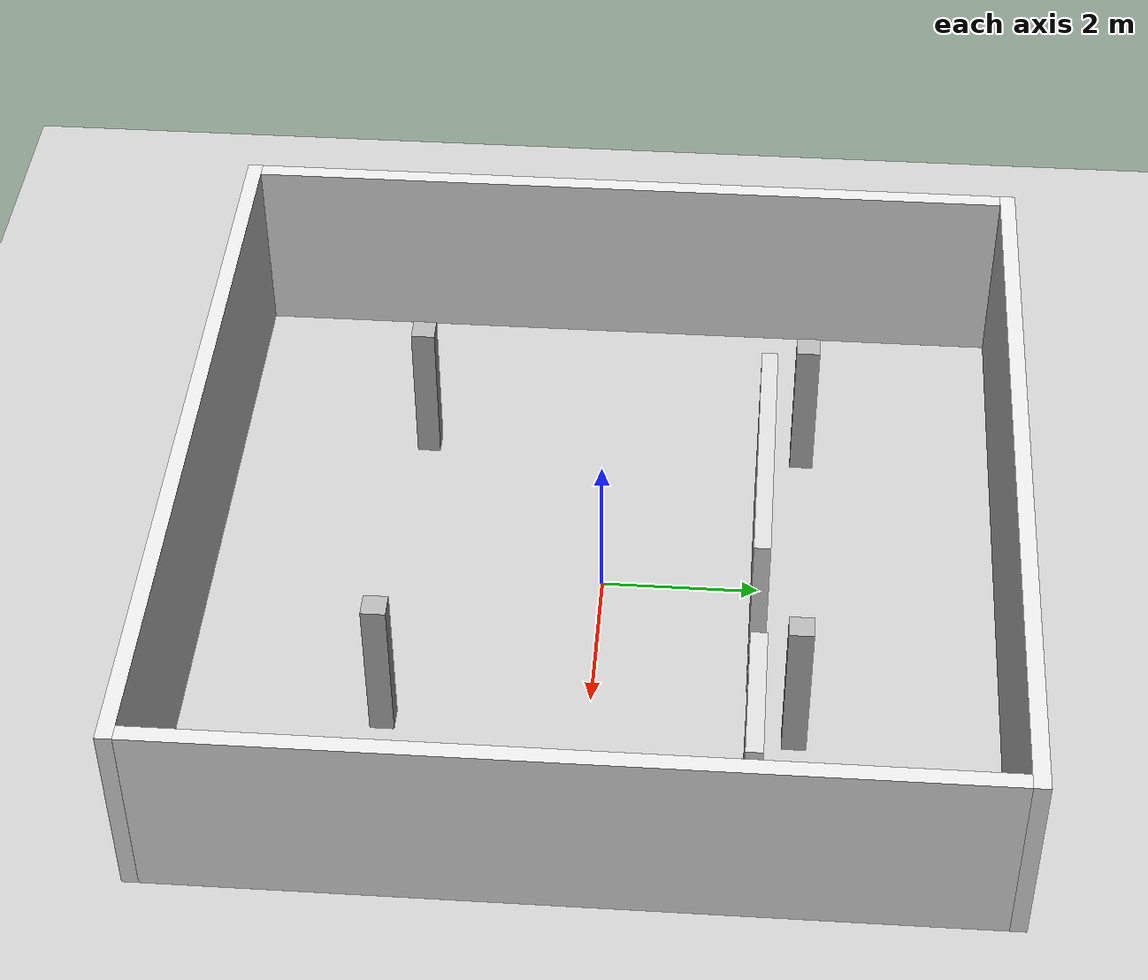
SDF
<?xml version="1.0"?>
<sdf version="1.8">
  <world name="storm_world">

    <physics name="1ms" type="ignored">
      <max_step_size>0.001</max_step_size>
      <real_time_factor>1.0</real_time_factor>
    </physics>

    <!-- Required world plugins (Ignition Fortress / ign-gazebo6 naming) -->
    <plugin filename="ignition-gazebo-physics-system"
            name="ignition::gazebo::systems::Physics"/>
    <!-- Sensors plugin is required for GPU LiDAR to render -->
    <plugin filename="ignition-gazebo-sensors-system"
            name="ignition::gazebo::systems::Sensors">
      <render_engine>ogre</render_engine>
    </plugin>
    <plugin filename="ignition-gazebo-user-commands-system"
            name="ignition::gazebo::systems::UserCommands"/>
    <plugin filename="ignition-gazebo-scene-broadcaster-system"
            name="ignition::gazebo::systems::SceneBroadcaster"/>

    <light name="sun" type="directional">
      <cast_shadows>true</cast_shadows>
      <pose>0 0 10 0 0 0</pose>
      <diffuse>0.8 0.8 0.8 1</diffuse>
      <specular>0.2 0.2 0.2 1</specular>
      <direction>-0.5 0.1 -0.9</direction>
    </light>

    <!-- Ground plane -->
    <model name="ground_plane">
      <static>true</static>
      <link name="link">
        <collision name="collision">
          <geometry>
            <plane>
              <normal>0 0 1</normal>
              <size>100 100</size>
            </plane>
          </geometry>
        </collision>
        <visual name="visual">
          <geometry>
            <plane>
              <normal>0 0 1</normal>
              <size>100 100</size>
            </plane>
          </geometry>
          <material>
            <ambient>0.8 0.8 0.8 1</ambient>
            <diffuse>0.8 0.8 0.8 1</diffuse>
          </material>
        </visual>
      </link>
    </model>

    <!-- Outer walls: 10m x 10m room, 2.5m tall, 0.2m thick -->

    <model name="wall_north">
      <static>true</static>
      <pose>0 5.1 1.25 0 0 0</pose>
      <link name="link">
        <collision name="collision">
          <geometry><box><size>10.4 0.2 2.5</size></box></geometry>
        </collision>
        <visual name="visual">
          <geometry><box><size>10.4 0.2 2.5</size></box></geometry>
          <material><ambient>0.9 0.9 0.9 1</ambient></material>
        </visual>
      </link>
    </model>

    <model name="wall_south">
      <static>true</static>
      <pose>0 -5.1 1.25 0 0 0</pose>
      <link name="link">
        <collision name="collision">
          <geometry><box><size>10.4 0.2 2.5</size></box></geometry>
        </collision>
        <visual name="visual">
          <geometry><box><size>10.4 0.2 2.5</size></box></geometry>
          <material><ambient>0.9 0.9 0.9 1</ambient></material>
        </visual>
      </link>
    </model>

    <model name="wall_east">
      <static>true</static>
      <pose>5.1 0 1.25 0 0 0</pose>
      <link name="link">
        <collision name="collision">
          <geometry><box><size>0.2 10.0 2.5</size></box></geometry>
        </collision>
        <visual name="visual">
          <geometry><box><size>0.2 10.0 2.5</size></box></geometry>
          <material><ambient>0.9 0.9 0.9 1</ambient></material>
        </visual>
      </link>
    </model>

    <model name="wall_west">
      <static>true</static>
      <pose>-5.1 0 1.25 0 0 0</pose>
      <link name="link">
        <collision name="collision">
          <geometry><box><size>0.2 10.0 2.5</size></box></geometry>
        </collision>
        <visual name="visual">
          <geometry><box><size>0.2 10.0 2.5</size></box></geometry>
          <material><ambient>0.9 0.9 0.9 1</ambient></material>
        </visual>
      </link>
    </model>

    <!-- Interior features for better SLAM landmark density -->

    <model name="pillar_1">
      <static>true</static>
      <pose>2.5 2.5 1.0 0 0 0</pose>
      <link name="link">
        <collision name="collision">
          <geometry><box><size>0.3 0.3 2.0</size></box></geometry>
        </collision>
        <visual name="visual">
          <geometry><box><size>0.3 0.3 2.0</size></box></geometry>
          <material><ambient>0.7 0.7 0.7 1</ambient></material>
        </visual>
      </link>
    </model>

    <model name="pillar_2">
      <static>true</static>
      <pose>-2.5 2.5 1.0 0 0 0</pose>
      <link name="link">
        <collision name="collision">
          <geometry><box><size>0.3 0.3 2.0</size></box></geometry>
        </collision>
        <visual name="visual">
          <geometry><box><size>0.3 0.3 2.0</size></box></geometry>
          <material><ambient>0.7 0.7 0.7 1</ambient></material>
        </visual>
      </link>
    </model>

    <model name="pillar_3">
      <static>true</static>
      <pose>2.5 -2.5 1.0 0 0 0</pose>
      <link name="link">
        <collision name="collision">
          <geometry><box><size>0.3 0.3 2.0</size></box></geometry>
        </collision>
        <visual name="visual">
          <geometry><box><size>0.3 0.3 2.0</size></box></geometry>
          <material><ambient>0.7 0.7 0.7 1</ambient></material>
        </visual>
      </link>
    </model>

    <model name="pillar_4">
      <static>true</static>
      <pose>-2.5 -2.5 1.0 0 0 0</pose>
      <link name="link">
        <collision name="collision">
          <geometry><box><size>0.3 0.3 2.0</size></box></geometry>
        </collision>
        <visual name="visual">
          <geometry><box><size>0.3 0.3 2.0</size></box></geometry>
          <material><ambient>0.7 0.7 0.7 1</ambient></material>
        </visual>
      </link>
    </model>

    <!-- Interior partition wall with doorway -->
    <model name="partition_west">
      <static>true</static>
      <pose>0 2.0 1.25 0 0 0</pose>
      <link name="link">
        <collision name="collision">
          <geometry><box><size>3.5 0.2 2.5</size></box></geometry>
        </collision>
        <visual name="visual">
          <geometry><box><size>3.5 0.2 2.5</size></box></geometry>
          <material><ambient>0.85 0.85 0.85 1</ambient></material>
        </visual>
      </link>
    </model>

    <model name="partition_east">
      <static>true</static>
      <pose>4.0 2.0 1.25 0 0 0</pose>
      <link name="link">
        <collision name="collision">
          <geometry><box><size>1.8 0.2 2.5</size></box></geometry>
        </collision>
        <visual name="visual">
          <geometry><box><size>1.8 0.2 2.5</size></box></geometry>
          <material><ambient>0.85 0.85 0.85 1</ambient></material>
        </visual>
      </link>
    </model>

  </world>
</sdf>
